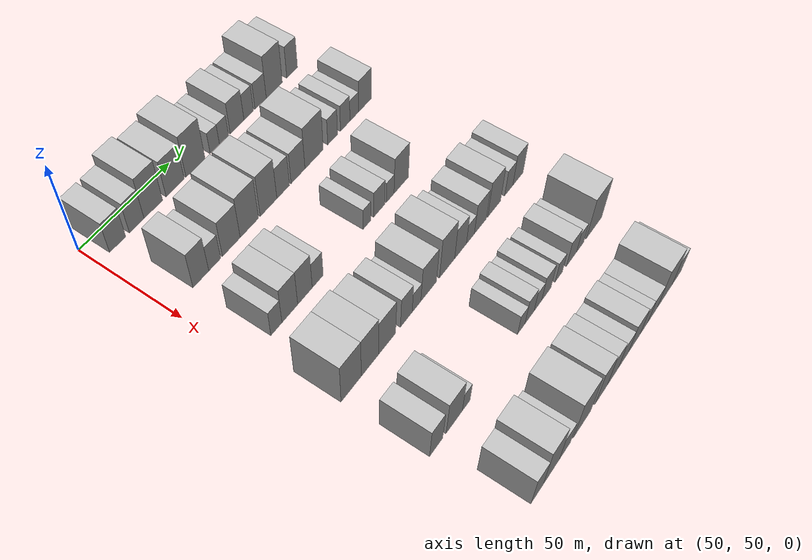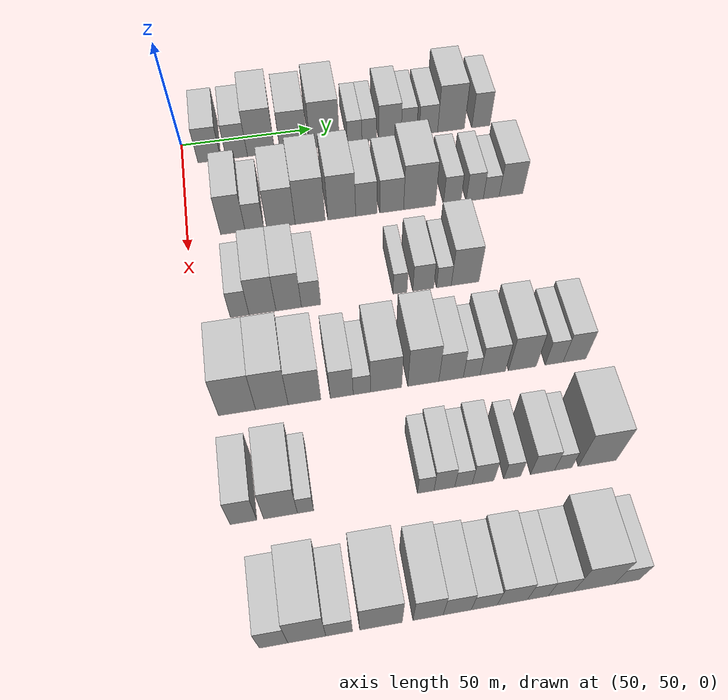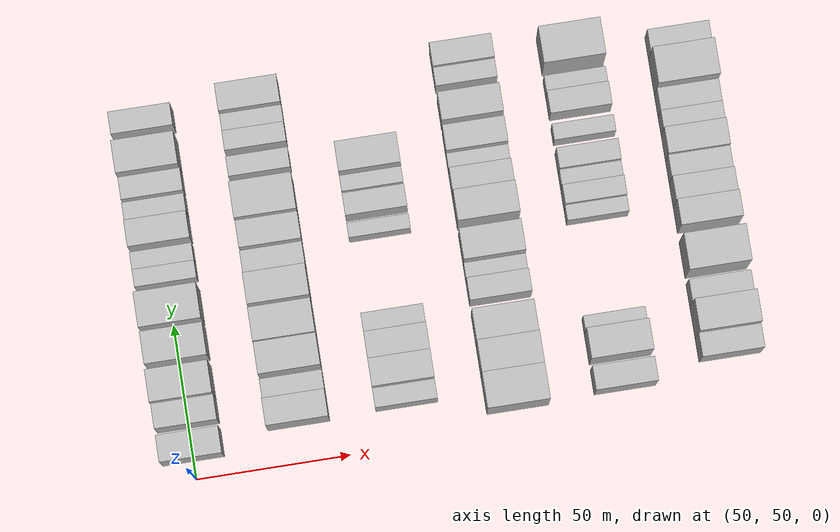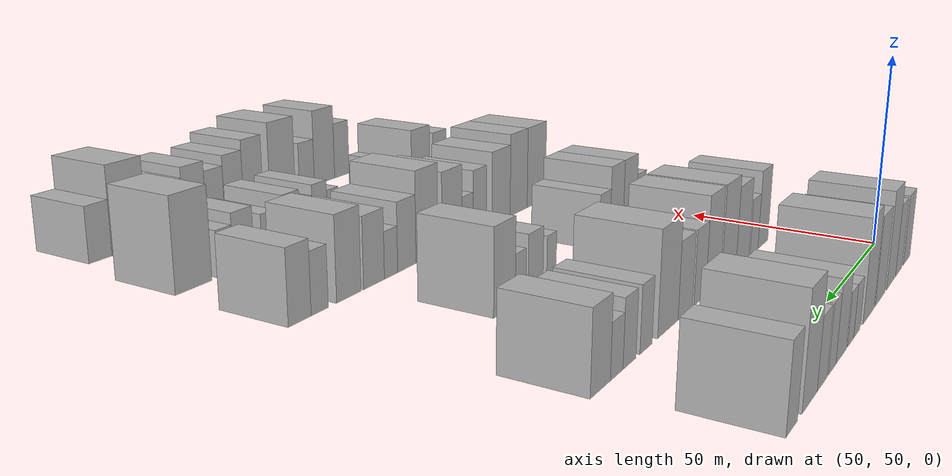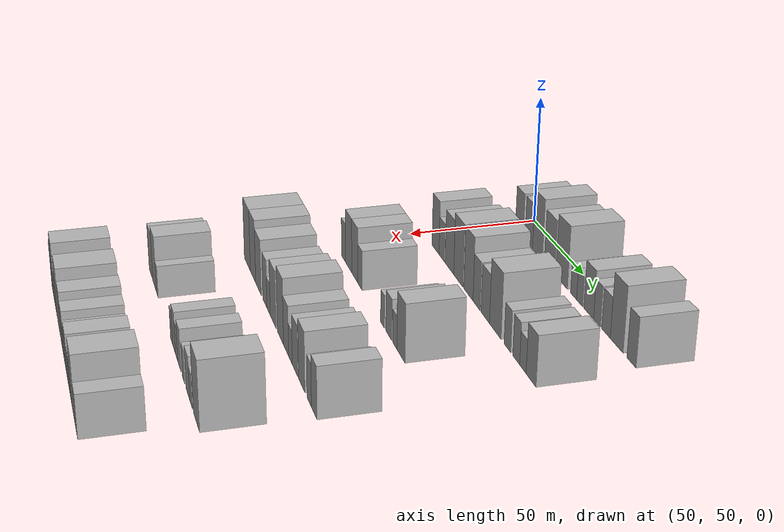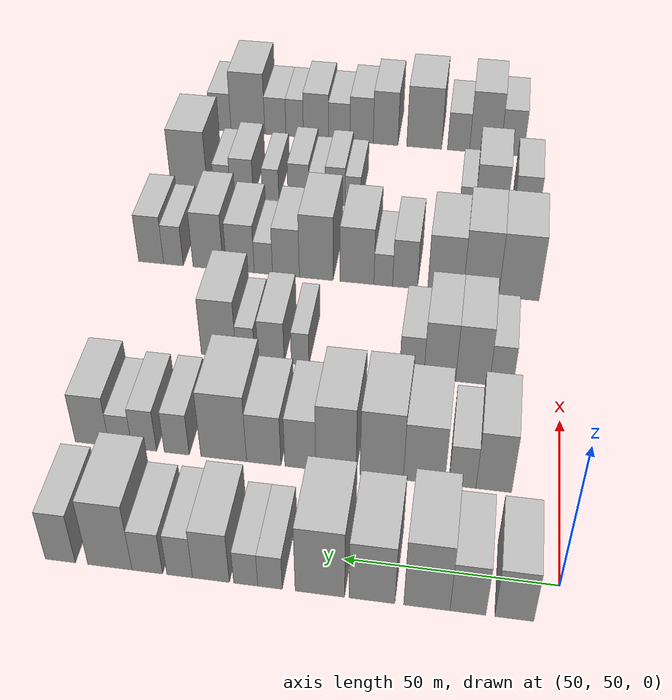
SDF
<sdf version="1.6">
 <world name="default">
  <model name="building_60">
   <static>1</static>
   <pose>50.0000 60.1032 0 0.000000 0.000000 0.000000</pose>
   <link name="link">
    <pose>0 0 9.00 0 0 0</pose>
    <collision name="collision"><geometry><box><size>20.0000 8.6808 18.0000</size></box></geometry></collision>
    <visual name="visual">
     <cast_shadows>0</cast_shadows>
     <geometry><box><size>20.0000 8.6808 18.0000</size></box></geometry>
     <material>
      <script>
       <uri>model://HANNAS_wall/materials/scripts</uri>
       <uri>model://HANNAS_wall/materials/textures</uri>
       <name>vrc/HANNAS_wall</name>
      </script>
     </material>
    </visual>
   </link>
  </model>
  <model name="building_61">
   <static>1</static>
   <pose>50.0000 70.4776 0 0.000000 0.000000 0.000000</pose>
   <link name="link">
    <pose>0 0 9.00 0 0 0</pose>
    <collision name="collision"><geometry><box><size>20.0000 8.0680 18.0000</size></box></geometry></collision>
    <visual name="visual">
     <cast_shadows>0</cast_shadows>
     <geometry><box><size>20.0000 8.0680 18.0000</size></box></geometry>
     <material>
      <script>
       <uri>model://HANNAS_wall/materials/scripts</uri>
       <uri>model://HANNAS_wall/materials/textures</uri>
       <name>vrc/HANNAS_wall</name>
      </script>
     </material>
    </visual>
   </link>
  </model>
  <model name="building_62">
   <static>1</static>
   <pose>50.0000 79.7309 0 0.000000 0.000000 0.000000</pose>
   <link name="link">
    <pose>0 0 12.00 0 0 0</pose>
    <collision name="collision"><geometry><box><size>20.0000 10.4385 24.0000</size></box></geometry></collision>
    <visual name="visual">
     <cast_shadows>0</cast_shadows>
     <geometry><box><size>20.0000 10.4385 24.0000</size></box></geometry>
     <material>
      <script>
       <uri>model://HANNAS_wall/materials/scripts</uri>
       <uri>model://HANNAS_wall/materials/textures</uri>
       <name>vrc/HANNAS_wall</name>
      </script>
     </material>
    </visual>
   </link>
  </model>
  <model name="building_63">
   <static>1</static>
   <pose>50.0000 92.1981 0 0.000000 0.000000 0.000000</pose>
   <link name="link">
    <pose>0 0 10.50 0 0 0</pose>
    <collision name="collision"><geometry><box><size>20.0000 10.4959 21.0000</size></box></geometry></collision>
    <visual name="visual">
     <cast_shadows>0</cast_shadows>
     <geometry><box><size>20.0000 10.4959 21.0000</size></box></geometry>
     <material>
      <script>
       <uri>model://HANNAS_wall/materials/scripts</uri>
       <uri>model://HANNAS_wall/materials/textures</uri>
       <name>vrc/HANNAS_wall</name>
      </script>
     </material>
    </visual>
   </link>
  </model>
  <model name="building_64">
   <static>1</static>
   <pose>50.0000 104.1348 0 0.000000 0.000000 0.000000</pose>
   <link name="link">
    <pose>0 0 12.00 0 0 0</pose>
    <collision name="collision"><geometry><box><size>20.0000 11.3775 24.0000</size></box></geometry></collision>
    <visual name="visual">
     <cast_shadows>0</cast_shadows>
     <geometry><box><size>20.0000 11.3775 24.0000</size></box></geometry>
     <material>
      <script>
       <uri>model://HANNAS_wall/materials/scripts</uri>
       <uri>model://HANNAS_wall/materials/textures</uri>
       <name>vrc/HANNAS_wall</name>
      </script>
     </material>
    </visual>
   </link>
  </model>
  <model name="building_65">
   <static>1</static>
   <pose>50.0000 115.6754 0 0.000000 0.000000 0.000000</pose>
   <link name="link">
    <pose>0 0 6.00 0 0 0</pose>
    <collision name="collision"><geometry><box><size>20.0000 5.7039 12.0000</size></box></geometry></collision>
    <visual name="visual">
     <cast_shadows>0</cast_shadows>
     <geometry><box><size>20.0000 5.7039 12.0000</size></box></geometry>
     <material>
      <script>
       <uri>model://HANNAS_wall/materials/scripts</uri>
       <uri>model://HANNAS_wall/materials/textures</uri>
       <name>vrc/HANNAS_wall</name>
      </script>
     </material>
    </visual>
   </link>
  </model>
  <model name="building_66">
   <static>1</static>
   <pose>50.0000 121.3418 0 0.000000 0.000000 0.000000</pose>
   <link name="link">
    <pose>0 0 6.00 0 0 0</pose>
    <collision name="collision"><geometry><box><size>20.0000 5.6288 12.0000</size></box></geometry></collision>
    <visual name="visual">
     <cast_shadows>0</cast_shadows>
     <geometry><box><size>20.0000 5.6288 12.0000</size></box></geometry>
     <material>
      <script>
       <uri>model://HANNAS_wall/materials/scripts</uri>
       <uri>model://HANNAS_wall/materials/textures</uri>
       <name>vrc/HANNAS_wall</name>
      </script>
     </material>
    </visual>
   </link>
  </model>
  <model name="building_67">
   <static>1</static>
   <pose>50.0000 129.4987 0 0.000000 0.000000 0.000000</pose>
   <link name="link">
    <pose>0 0 9.00 0 0 0</pose>
    <collision name="collision"><geometry><box><size>20.0000 8.6850 18.0000</size></box></geometry></collision>
    <visual name="visual">
     <cast_shadows>0</cast_shadows>
     <geometry><box><size>20.0000 8.6850 18.0000</size></box></geometry>
     <material>
      <script>
       <uri>model://HANNAS_wall/materials/scripts</uri>
       <uri>model://HANNAS_wall/materials/textures</uri>
       <name>vrc/HANNAS_wall</name>
      </script>
     </material>
    </visual>
   </link>
  </model>
  <model name="building_68">
   <static>1</static>
   <pose>50.0000 136.8755 0 0.000000 0.000000 0.000000</pose>
   <link name="link">
    <pose>0 0 7.50 0 0 0</pose>
    <collision name="collision"><geometry><box><size>20.0000 6.0686 15.0000</size></box></geometry></collision>
    <visual name="visual">
     <cast_shadows>0</cast_shadows>
     <geometry><box><size>20.0000 6.0686 15.0000</size></box></geometry>
     <material>
      <script>
       <uri>model://HANNAS_wall/materials/scripts</uri>
       <uri>model://HANNAS_wall/materials/textures</uri>
       <name>vrc/HANNAS_wall</name>
      </script>
     </material>
    </visual>
   </link>
  </model>
  <model name="building_69">
   <static>1</static>
   <pose>50.0000 144.5583 0 0.000000 0.000000 0.000000</pose>
   <link name="link">
    <pose>0 0 7.50 0 0 0</pose>
    <collision name="collision"><geometry><box><size>20.0000 7.2969 15.0000</size></box></geometry></collision>
    <visual name="visual">
     <cast_shadows>0</cast_shadows>
     <geometry><box><size>20.0000 7.2969 15.0000</size></box></geometry>
     <material>
      <script>
       <uri>model://HANNAS_wall/materials/scripts</uri>
       <uri>model://HANNAS_wall/materials/textures</uri>
       <name>vrc/HANNAS_wall</name>
      </script>
     </material>
    </visual>
   </link>
  </model>
  <model name="building_70">
   <static>1</static>
   <pose>50.0000 153.5086 0 0.000000 0.000000 0.000000</pose>
   <link name="link">
    <pose>0 0 12.00 0 0 0</pose>
    <collision name="collision"><geometry><box><size>20.0000 10.6038 24.0000</size></box></geometry></collision>
    <visual name="visual">
     <cast_shadows>0</cast_shadows>
     <geometry><box><size>20.0000 10.6038 24.0000</size></box></geometry>
     <material>
      <script>
       <uri>model://HANNAS_wall/materials/scripts</uri>
       <uri>model://HANNAS_wall/materials/textures</uri>
       <name>vrc/HANNAS_wall</name>
      </script>
     </material>
    </visual>
   </link>
  </model>
  <model name="building_71">
   <static>1</static>
   <pose>50.0000 165.4371 0 0.000000 0.000000 0.000000</pose>
   <link name="link">
    <pose>0 0 9.00 0 0 0</pose>
    <collision name="collision"><geometry><box><size>20.0000 7.2532 18.0000</size></box></geometry></collision>
    <visual name="visual">
     <cast_shadows>0</cast_shadows>
     <geometry><box><size>20.0000 7.2532 18.0000</size></box></geometry>
     <material>
      <script>
       <uri>model://HANNAS_wall/materials/scripts</uri>
       <uri>model://HANNAS_wall/materials/textures</uri>
       <name>vrc/HANNAS_wall</name>
      </script>
     </material>
    </visual>
   </link>
  </model>
  <model name="building_186">
   <static>1</static>
   <pose>85.0000 66.1621 0 0.000000 0.000000 0.000000</pose>
   <link name="link">
    <pose>0 0 10.50 0 0 0</pose>
    <collision name="collision"><geometry><box><size>20.0000 8.7911 21.0000</size></box></geometry></collision>
    <visual name="visual">
     <cast_shadows>0</cast_shadows>
     <geometry><box><size>20.0000 8.7911 21.0000</size></box></geometry>
     <material>
      <script>
       <uri>model://HANNAS_wall/materials/scripts</uri>
       <uri>model://HANNAS_wall/materials/textures</uri>
       <name>vrc/HANNAS_wall</name>
      </script>
     </material>
    </visual>
   </link>
  </model>
  <model name="building_187">
   <static>1</static>
   <pose>85.0000 73.9094 0 0.000000 0.000000 0.000000</pose>
   <link name="link">
    <pose>0 0 7.50 0 0 0</pose>
    <collision name="collision"><geometry><box><size>20.0000 6.7035 15.0000</size></box></geometry></collision>
    <visual name="visual">
     <cast_shadows>0</cast_shadows>
     <geometry><box><size>20.0000 6.7035 15.0000</size></box></geometry>
     <material>
      <script>
       <uri>model://HANNAS_wall/materials/scripts</uri>
       <uri>model://HANNAS_wall/materials/textures</uri>
       <name>vrc/HANNAS_wall</name>
      </script>
     </material>
    </visual>
   </link>
  </model>
  <model name="building_188">
   <static>1</static>
   <pose>85.0000 83.3965 0 0.000000 0.000000 0.000000</pose>
   <link name="link">
    <pose>0 0 10.50 0 0 0</pose>
    <collision name="collision"><geometry><box><size>20.0000 10.2705 21.0000</size></box></geometry></collision>
    <visual name="visual">
     <cast_shadows>0</cast_shadows>
     <geometry><box><size>20.0000 10.2705 21.0000</size></box></geometry>
     <material>
      <script>
       <uri>model://HANNAS_wall/materials/scripts</uri>
       <uri>model://HANNAS_wall/materials/textures</uri>
       <name>vrc/HANNAS_wall</name>
      </script>
     </material>
    </visual>
   </link>
  </model>
  <model name="building_189">
   <static>1</static>
   <pose>85.0000 93.9676 0 0.000000 0.000000 0.000000</pose>
   <link name="link">
    <pose>0 0 12.00 0 0 0</pose>
    <collision name="collision"><geometry><box><size>20.0000 10.8718 24.0000</size></box></geometry></collision>
    <visual name="visual">
     <cast_shadows>0</cast_shadows>
     <geometry><box><size>20.0000 10.8718 24.0000</size></box></geometry>
     <material>
      <script>
       <uri>model://HANNAS_wall/materials/scripts</uri>
       <uri>model://HANNAS_wall/materials/textures</uri>
       <name>vrc/HANNAS_wall</name>
      </script>
     </material>
    </visual>
   </link>
  </model>
  <model name="building_190">
   <static>1</static>
   <pose>85.0000 105.4801 0 0.000000 0.000000 0.000000</pose>
   <link name="link">
    <pose>0 0 12.00 0 0 0</pose>
    <collision name="collision"><geometry><box><size>20.0000 10.1533 24.0000</size></box></geometry></collision>
    <visual name="visual">
     <cast_shadows>0</cast_shadows>
     <geometry><box><size>20.0000 10.1533 24.0000</size></box></geometry>
     <material>
      <script>
       <uri>model://HANNAS_wall/materials/scripts</uri>
       <uri>model://HANNAS_wall/materials/textures</uri>
       <name>vrc/HANNAS_wall</name>
      </script>
     </material>
    </visual>
   </link>
  </model>
  <model name="building_191">
   <static>1</static>
   <pose>85.0000 114.4737 0 0.000000 0.000000 0.000000</pose>
   <link name="link">
    <pose>0 0 9.00 0 0 0</pose>
    <collision name="collision"><geometry><box><size>20.0000 7.8338 18.0000</size></box></geometry></collision>
    <visual name="visual">
     <cast_shadows>0</cast_shadows>
     <geometry><box><size>20.0000 7.8338 18.0000</size></box></geometry>
     <material>
      <script>
       <uri>model://HANNAS_wall/materials/scripts</uri>
       <uri>model://HANNAS_wall/materials/textures</uri>
       <name>vrc/HANNAS_wall</name>
      </script>
     </material>
    </visual>
   </link>
  </model>
  <model name="building_192">
   <static>1</static>
   <pose>85.0000 123.7861 0 0.000000 0.000000 0.000000</pose>
   <link name="link">
    <pose>0 0 9.00 0 0 0</pose>
    <collision name="collision"><geometry><box><size>20.0000 8.7911 18.0000</size></box></geometry></collision>
    <visual name="visual">
     <cast_shadows>0</cast_shadows>
     <geometry><box><size>20.0000 8.7911 18.0000</size></box></geometry>
     <material>
      <script>
       <uri>model://HANNAS_wall/materials/scripts</uri>
       <uri>model://HANNAS_wall/materials/textures</uri>
       <name>vrc/HANNAS_wall</name>
      </script>
     </material>
    </visual>
   </link>
  </model>
  <model name="building_193">
   <static>1</static>
   <pose>85.0000 134.0909 0 0.000000 0.000000 0.000000</pose>
   <link name="link">
    <pose>0 0 12.00 0 0 0</pose>
    <collision name="collision"><geometry><box><size>20.0000 11.8184 24.0000</size></box></geometry></collision>
    <visual name="visual">
     <cast_shadows>0</cast_shadows>
     <geometry><box><size>20.0000 11.8184 24.0000</size></box></geometry>
     <material>
      <script>
       <uri>model://HANNAS_wall/materials/scripts</uri>
       <uri>model://HANNAS_wall/materials/textures</uri>
       <name>vrc/HANNAS_wall</name>
      </script>
     </material>
    </visual>
   </link>
  </model>
  <model name="building_194">
   <static>1</static>
   <pose>85.0000 146.2504 0 0.000000 0.000000 0.000000</pose>
   <link name="link">
    <pose>0 0 7.50 0 0 0</pose>
    <collision name="collision"><geometry><box><size>20.0000 6.5005 15.0000</size></box></geometry></collision>
    <visual name="visual">
     <cast_shadows>0</cast_shadows>
     <geometry><box><size>20.0000 6.5005 15.0000</size></box></geometry>
     <material>
      <script>
       <uri>model://HANNAS_wall/materials/scripts</uri>
       <uri>model://HANNAS_wall/materials/textures</uri>
       <name>vrc/HANNAS_wall</name>
      </script>
     </material>
    </visual>
   </link>
  </model>
  <model name="building_195">
   <static>1</static>
   <pose>85.0000 154.7199 0 0.000000 0.000000 0.000000</pose>
   <link name="link">
    <pose>0 0 7.50 0 0 0</pose>
    <collision name="collision"><geometry><box><size>20.0000 6.4386 15.0000</size></box></geometry></collision>
    <visual name="visual">
     <cast_shadows>0</cast_shadows>
     <geometry><box><size>20.0000 6.4386 15.0000</size></box></geometry>
     <material>
      <script>
       <uri>model://HANNAS_wall/materials/scripts</uri>
       <uri>model://HANNAS_wall/materials/textures</uri>
       <name>vrc/HANNAS_wall</name>
      </script>
     </material>
    </visual>
   </link>
  </model>
  <model name="building_196">
   <static>1</static>
   <pose>85.0000 160.9288 0 0.000000 0.000000 0.000000</pose>
   <link name="link">
    <pose>0 0 6.00 0 0 0</pose>
    <collision name="collision"><geometry><box><size>20.0000 5.9792 12.0000</size></box></geometry></collision>
    <visual name="visual">
     <cast_shadows>0</cast_shadows>
     <geometry><box><size>20.0000 5.9792 12.0000</size></box></geometry>
     <material>
      <script>
       <uri>model://HANNAS_wall/materials/scripts</uri>
       <uri>model://HANNAS_wall/materials/textures</uri>
       <name>vrc/HANNAS_wall</name>
      </script>
     </material>
    </visual>
   </link>
  </model>
  <model name="building_197">
   <static>1</static>
   <pose>85.0000 168.4121 0 0.000000 0.000000 0.000000</pose>
   <link name="link">
    <pose>0 0 9.00 0 0 0</pose>
    <collision name="collision"><geometry><box><size>20.0000 8.9873 18.0000</size></box></geometry></collision>
    <visual name="visual">
     <cast_shadows>0</cast_shadows>
     <geometry><box><size>20.0000 8.9873 18.0000</size></box></geometry>
     <material>
      <script>
       <uri>model://HANNAS_wall/materials/scripts</uri>
       <uri>model://HANNAS_wall/materials/textures</uri>
       <name>vrc/HANNAS_wall</name>
      </script>
     </material>
    </visual>
   </link>
  </model>
  <model name="building_311">
   <static>1</static>
   <pose>120.0000 65.6397 0 0.000000 0.000000 0.000000</pose>
   <link name="link">
    <pose>0 0 7.50 0 0 0</pose>
    <collision name="collision"><geometry><box><size>20.0000 6.2974 15.0000</size></box></geometry></collision>
    <visual name="visual">
     <cast_shadows>0</cast_shadows>
     <geometry><box><size>20.0000 6.2974 15.0000</size></box></geometry>
     <material>
      <script>
       <uri>model://HANNAS_wall/materials/scripts</uri>
       <uri>model://HANNAS_wall/materials/textures</uri>
       <name>vrc/HANNAS_wall</name>
      </script>
     </material>
    </visual>
   </link>
  </model>
  <model name="building_312">
   <static>1</static>
   <pose>120.0000 73.3262 0 0.000000 0.000000 0.000000</pose>
   <link name="link">
    <pose>0 0 10.50 0 0 0</pose>
    <collision name="collision"><geometry><box><size>20.0000 9.0757 21.0000</size></box></geometry></collision>
    <visual name="visual">
     <cast_shadows>0</cast_shadows>
     <geometry><box><size>20.0000 9.0757 21.0000</size></box></geometry>
     <material>
      <script>
       <uri>model://HANNAS_wall/materials/scripts</uri>
       <uri>model://HANNAS_wall/materials/textures</uri>
       <name>vrc/HANNAS_wall</name>
      </script>
     </material>
    </visual>
   </link>
  </model>
  <model name="building_313">
   <static>1</static>
   <pose>120.0000 82.1674 0 0.000000 0.000000 0.000000</pose>
   <link name="link">
    <pose>0 0 10.50 0 0 0</pose>
    <collision name="collision"><geometry><box><size>20.0000 8.6066 21.0000</size></box></geometry></collision>
    <visual name="visual">
     <cast_shadows>0</cast_shadows>
     <geometry><box><size>20.0000 8.6066 21.0000</size></box></geometry>
     <material>
      <script>
       <uri>model://HANNAS_wall/materials/scripts</uri>
       <uri>model://HANNAS_wall/materials/textures</uri>
       <name>vrc/HANNAS_wall</name>
      </script>
     </material>
    </visual>
   </link>
  </model>
  <model name="building_314">
   <static>1</static>
   <pose>120.0000 89.7634 0 0.000000 0.000000 0.000000</pose>
   <link name="link">
    <pose>0 0 7.50 0 0 0</pose>
    <collision name="collision"><geometry><box><size>20.0000 6.5854 15.0000</size></box></geometry></collision>
    <visual name="visual">
     <cast_shadows>0</cast_shadows>
     <geometry><box><size>20.0000 6.5854 15.0000</size></box></geometry>
     <material>
      <script>
       <uri>model://HANNAS_wall/materials/scripts</uri>
       <uri>model://HANNAS_wall/materials/textures</uri>
       <name>vrc/HANNAS_wall</name>
      </script>
     </material>
    </visual>
   </link>
  </model>
  <model name="building_315">
   <static>1</static>
   <pose>120.0000 120.3362 0 0.000000 0.000000 0.000000</pose>
   <link name="link">
    <pose>0 0 6.00 0 0 0</pose>
    <collision name="collision"><geometry><box><size>20.0000 4.8534 12.0000</size></box></geometry></collision>
    <visual name="visual">
     <cast_shadows>0</cast_shadows>
     <geometry><box><size>20.0000 4.8534 12.0000</size></box></geometry>
     <material>
      <script>
       <uri>model://HANNAS_wall/materials/scripts</uri>
       <uri>model://HANNAS_wall/materials/textures</uri>
       <name>vrc/HANNAS_wall</name>
      </script>
     </material>
    </visual>
   </link>
  </model>
  <model name="building_316">
   <static>1</static>
   <pose>120.0000 128.4043 0 0.000000 0.000000 0.000000</pose>
   <link name="link">
    <pose>0 0 7.50 0 0 0</pose>
    <collision name="collision"><geometry><box><size>20.0000 7.2827 15.0000</size></box></geometry></collision>
    <visual name="visual">
     <cast_shadows>0</cast_shadows>
     <geometry><box><size>20.0000 7.2827 15.0000</size></box></geometry>
     <material>
      <script>
       <uri>model://HANNAS_wall/materials/scripts</uri>
       <uri>model://HANNAS_wall/materials/textures</uri>
       <name>vrc/HANNAS_wall</name>
      </script>
     </material>
    </visual>
   </link>
  </model>
  <model name="building_317">
   <static>1</static>
   <pose>120.0000 135.6257 0 0.000000 0.000000 0.000000</pose>
   <link name="link">
    <pose>0 0 6.00 0 0 0</pose>
    <collision name="collision"><geometry><box><size>20.0000 5.1600 12.0000</size></box></geometry></collision>
    <visual name="visual">
     <cast_shadows>0</cast_shadows>
     <geometry><box><size>20.0000 5.1600 12.0000</size></box></geometry>
     <material>
      <script>
       <uri>model://HANNAS_wall/materials/scripts</uri>
       <uri>model://HANNAS_wall/materials/textures</uri>
       <name>vrc/HANNAS_wall</name>
      </script>
     </material>
    </visual>
   </link>
  </model>
  <model name="building_318">
   <static>1</static>
   <pose>120.0000 143.0825 0 0.000000 0.000000 0.000000</pose>
   <link name="link">
    <pose>0 0 10.50 0 0 0</pose>
    <collision name="collision"><geometry><box><size>20.0000 9.7536 21.0000</size></box></geometry></collision>
    <visual name="visual">
     <cast_shadows>0</cast_shadows>
     <geometry><box><size>20.0000 9.7536 21.0000</size></box></geometry>
     <material>
      <script>
       <uri>model://HANNAS_wall/materials/scripts</uri>
       <uri>model://HANNAS_wall/materials/textures</uri>
       <name>vrc/HANNAS_wall</name>
      </script>
     </material>
    </visual>
   </link>
  </model>
  <model name="building_433">
   <static>1</static>
   <pose>155.0000 61.8766 0 0.000000 0.000000 0.000000</pose>
   <link name="link">
    <pose>0 0 12.00 0 0 0</pose>
    <collision name="collision"><geometry><box><size>20.0000 11.6687 24.0000</size></box></geometry></collision>
    <visual name="visual">
     <cast_shadows>0</cast_shadows>
     <geometry><box><size>20.0000 11.6687 24.0000</size></box></geometry>
     <material>
      <script>
       <uri>model://HANNAS_wall/materials/scripts</uri>
       <uri>model://HANNAS_wall/materials/textures</uri>
       <name>vrc/HANNAS_wall</name>
      </script>
     </material>
    </visual>
   </link>
  </model>
  <model name="building_434">
   <static>1</static>
   <pose>155.0000 72.8483 0 0.000000 0.000000 0.000000</pose>
   <link name="link">
    <pose>0 0 12.00 0 0 0</pose>
    <collision name="collision"><geometry><box><size>20.0000 10.2746 24.0000</size></box></geometry></collision>
    <visual name="visual">
     <cast_shadows>0</cast_shadows>
     <geometry><box><size>20.0000 10.2746 24.0000</size></box></geometry>
     <material>
      <script>
       <uri>model://HANNAS_wall/materials/scripts</uri>
       <uri>model://HANNAS_wall/materials/textures</uri>
       <name>vrc/HANNAS_wall</name>
      </script>
     </material>
    </visual>
   </link>
  </model>
  <model name="building_435">
   <static>1</static>
   <pose>155.0000 83.1757 0 0.000000 0.000000 0.000000</pose>
   <link name="link">
    <pose>0 0 10.50 0 0 0</pose>
    <collision name="collision"><geometry><box><size>20.0000 10.3802 21.0000</size></box></geometry></collision>
    <visual name="visual">
     <cast_shadows>0</cast_shadows>
     <geometry><box><size>20.0000 10.3802 21.0000</size></box></geometry>
     <material>
      <script>
       <uri>model://HANNAS_wall/materials/scripts</uri>
       <uri>model://HANNAS_wall/materials/textures</uri>
       <name>vrc/HANNAS_wall</name>
      </script>
     </material>
    </visual>
   </link>
  </model>
  <model name="building_436">
   <static>1</static>
   <pose>155.0000 95.0254 0 0.000000 0.000000 0.000000</pose>
   <link name="link">
    <pose>0 0 9.00 0 0 0</pose>
    <collision name="collision"><geometry><box><size>20.0000 7.3194 18.0000</size></box></geometry></collision>
    <visual name="visual">
     <cast_shadows>0</cast_shadows>
     <geometry><box><size>20.0000 7.3194 18.0000</size></box></geometry>
     <material>
      <script>
       <uri>model://HANNAS_wall/materials/scripts</uri>
       <uri>model://HANNAS_wall/materials/textures</uri>
       <name>vrc/HANNAS_wall</name>
      </script>
     </material>
    </visual>
   </link>
  </model>
  <model name="building_437">
   <static>1</static>
   <pose>155.0000 101.4535 0 0.000000 0.000000 0.000000</pose>
   <link name="link">
    <pose>0 0 6.00 0 0 0</pose>
    <collision name="collision"><geometry><box><size>20.0000 5.5367 12.0000</size></box></geometry></collision>
    <visual name="visual">
     <cast_shadows>0</cast_shadows>
     <geometry><box><size>20.0000 5.5367 12.0000</size></box></geometry>
     <material>
      <script>
       <uri>model://HANNAS_wall/materials/scripts</uri>
       <uri>model://HANNAS_wall/materials/textures</uri>
       <name>vrc/HANNAS_wall</name>
      </script>
     </material>
    </visual>
   </link>
  </model>
  <model name="building_438">
   <static>1</static>
   <pose>155.0000 109.2726 0 0.000000 0.000000 0.000000</pose>
   <link name="link">
    <pose>0 0 10.50 0 0 0</pose>
    <collision name="collision"><geometry><box><size>20.0000 10.1015 21.0000</size></box></geometry></collision>
    <visual name="visual">
     <cast_shadows>0</cast_shadows>
     <geometry><box><size>20.0000 10.1015 21.0000</size></box></geometry>
     <material>
      <script>
       <uri>model://HANNAS_wall/materials/scripts</uri>
       <uri>model://HANNAS_wall/materials/textures</uri>
       <name>vrc/HANNAS_wall</name>
      </script>
     </material>
    </visual>
   </link>
  </model>
  <model name="building_439">
   <static>1</static>
   <pose>155.0000 121.3754 0 0.000000 0.000000 0.000000</pose>
   <link name="link">
    <pose>0 0 12.00 0 0 0</pose>
    <collision name="collision"><geometry><box><size>20.0000 10.1041 24.0000</size></box></geometry></collision>
    <visual name="visual">
     <cast_shadows>0</cast_shadows>
     <geometry><box><size>20.0000 10.1041 24.0000</size></box></geometry>
     <material>
      <script>
       <uri>model://HANNAS_wall/materials/scripts</uri>
       <uri>model://HANNAS_wall/materials/textures</uri>
       <name>vrc/HANNAS_wall</name>
      </script>
     </material>
    </visual>
   </link>
  </model>
  <model name="building_440">
   <static>1</static>
   <pose>155.0000 130.4437 0 0.000000 0.000000 0.000000</pose>
   <link name="link">
    <pose>0 0 9.00 0 0 0</pose>
    <collision name="collision"><geometry><box><size>20.0000 8.0325 18.0000</size></box></geometry></collision>
    <visual name="visual">
     <cast_shadows>0</cast_shadows>
     <geometry><box><size>20.0000 8.0325 18.0000</size></box></geometry>
     <material>
      <script>
       <uri>model://HANNAS_wall/materials/scripts</uri>
       <uri>model://HANNAS_wall/materials/textures</uri>
       <name>vrc/HANNAS_wall</name>
      </script>
     </material>
    </visual>
   </link>
  </model>
  <model name="building_441">
   <static>1</static>
   <pose>155.0000 137.2264 0 0.000000 0.000000 0.000000</pose>
   <link name="link">
    <pose>0 0 6.00 0 0 0</pose>
    <collision name="collision"><geometry><box><size>20.0000 5.5330 12.0000</size></box></geometry></collision>
    <visual name="visual">
     <cast_shadows>0</cast_shadows>
     <geometry><box><size>20.0000 5.5330 12.0000</size></box></geometry>
     <material>
      <script>
       <uri>model://HANNAS_wall/materials/scripts</uri>
       <uri>model://HANNAS_wall/materials/textures</uri>
       <name>vrc/HANNAS_wall</name>
      </script>
     </material>
    </visual>
   </link>
  </model>
  <model name="building_442">
   <static>1</static>
   <pose>155.0000 144.1922 0 0.000000 0.000000 0.000000</pose>
   <link name="link">
    <pose>0 0 9.00 0 0 0</pose>
    <collision name="collision"><geometry><box><size>20.0000 8.3985 18.0000</size></box></geometry></collision>
    <visual name="visual">
     <cast_shadows>0</cast_shadows>
     <geometry><box><size>20.0000 8.3985 18.0000</size></box></geometry>
     <material>
      <script>
       <uri>model://HANNAS_wall/materials/scripts</uri>
       <uri>model://HANNAS_wall/materials/textures</uri>
       <name>vrc/HANNAS_wall</name>
      </script>
     </material>
    </visual>
   </link>
  </model>
  <model name="building_443">
   <static>1</static>
   <pose>155.0000 154.0105 0 0.000000 0.000000 0.000000</pose>
   <link name="link">
    <pose>0 0 10.50 0 0 0</pose>
    <collision name="collision"><geometry><box><size>20.0000 9.2381 21.0000</size></box></geometry></collision>
    <visual name="visual">
     <cast_shadows>0</cast_shadows>
     <geometry><box><size>20.0000 9.2381 21.0000</size></box></geometry>
     <material>
      <script>
       <uri>model://HANNAS_wall/materials/scripts</uri>
       <uri>model://HANNAS_wall/materials/textures</uri>
       <name>vrc/HANNAS_wall</name>
      </script>
     </material>
    </visual>
   </link>
  </model>
  <model name="building_444">
   <static>1</static>
   <pose>155.0000 164.6362 0 0.000000 0.000000 0.000000</pose>
   <link name="link">
    <pose>0 0 7.50 0 0 0</pose>
    <collision name="collision"><geometry><box><size>20.0000 6.0134 15.0000</size></box></geometry></collision>
    <visual name="visual">
     <cast_shadows>0</cast_shadows>
     <geometry><box><size>20.0000 6.0134 15.0000</size></box></geometry>
     <material>
      <script>
       <uri>model://HANNAS_wall/materials/scripts</uri>
       <uri>model://HANNAS_wall/materials/textures</uri>
       <name>vrc/HANNAS_wall</name>
      </script>
     </material>
    </visual>
   </link>
  </model>
  <model name="building_445">
   <static>1</static>
   <pose>155.0000 171.5011 0 0.000000 0.000000 0.000000</pose>
   <link name="link">
    <pose>0 0 9.00 0 0 0</pose>
    <collision name="collision"><geometry><box><size>20.0000 7.7163 18.0000</size></box></geometry></collision>
    <visual name="visual">
     <cast_shadows>0</cast_shadows>
     <geometry><box><size>20.0000 7.7163 18.0000</size></box></geometry>
     <material>
      <script>
       <uri>model://HANNAS_wall/materials/scripts</uri>
       <uri>model://HANNAS_wall/materials/textures</uri>
       <name>vrc/HANNAS_wall</name>
      </script>
     </material>
    </visual>
   </link>
  </model>
  <model name="building_557">
   <static>1</static>
   <pose>190.0000 60.8457 0 0.000000 0.000000 0.000000</pose>
   <link name="link">
    <pose>0 0 9.00 0 0 0</pose>
    <collision name="collision"><geometry><box><size>20.0000 7.8183 18.0000</size></box></geometry></collision>
    <visual name="visual">
     <cast_shadows>0</cast_shadows>
     <geometry><box><size>20.0000 7.8183 18.0000</size></box></geometry>
     <material>
      <script>
       <uri>model://HANNAS_wall/materials/scripts</uri>
       <uri>model://HANNAS_wall/materials/textures</uri>
       <name>vrc/HANNAS_wall</name>
      </script>
     </material>
    </visual>
   </link>
  </model>
  <model name="building_558">
   <static>1</static>
   <pose>190.0000 71.7209 0 0.000000 0.000000 0.000000</pose>
   <link name="link">
    <pose>0 0 10.50 0 0 0</pose>
    <collision name="collision"><geometry><box><size>20.0000 9.9321 21.0000</size></box></geometry></collision>
    <visual name="visual">
     <cast_shadows>0</cast_shadows>
     <geometry><box><size>20.0000 9.9321 21.0000</size></box></geometry>
     <material>
      <script>
       <uri>model://HANNAS_wall/materials/scripts</uri>
       <uri>model://HANNAS_wall/materials/textures</uri>
       <name>vrc/HANNAS_wall</name>
      </script>
     </material>
    </visual>
   </link>
  </model>
  <model name="building_559">
   <static>1</static>
   <pose>190.0000 79.0983 0 0.000000 0.000000 0.000000</pose>
   <link name="link">
    <pose>0 0 6.00 0 0 0</pose>
    <collision name="collision"><geometry><box><size>20.0000 4.8227 12.0000</size></box></geometry></collision>
    <visual name="visual">
     <cast_shadows>0</cast_shadows>
     <geometry><box><size>20.0000 4.8227 12.0000</size></box></geometry>
     <material>
      <script>
       <uri>model://HANNAS_wall/materials/scripts</uri>
       <uri>model://HANNAS_wall/materials/textures</uri>
       <name>vrc/HANNAS_wall</name>
      </script>
     </material>
    </visual>
   </link>
  </model>
  <model name="building_560">
   <static>1</static>
   <pose>190.0000 115.0488 0 0.000000 0.000000 0.000000</pose>
   <link name="link">
    <pose>0 0 6.00 0 0 0</pose>
    <collision name="collision"><geometry><box><size>20.0000 5.0261 12.0000</size></box></geometry></collision>
    <visual name="visual">
     <cast_shadows>0</cast_shadows>
     <geometry><box><size>20.0000 5.0261 12.0000</size></box></geometry>
     <material>
      <script>
       <uri>model://HANNAS_wall/materials/scripts</uri>
       <uri>model://HANNAS_wall/materials/textures</uri>
       <name>vrc/HANNAS_wall</name>
      </script>
     </material>
    </visual>
   </link>
  </model>
  <model name="building_561">
   <static>1</static>
   <pose>190.0000 120.7089 0 0.000000 0.000000 0.000000</pose>
   <link name="link">
    <pose>0 0 7.50 0 0 0</pose>
    <collision name="collision"><geometry><box><size>20.0000 6.2941 15.0000</size></box></geometry></collision>
    <visual name="visual">
     <cast_shadows>0</cast_shadows>
     <geometry><box><size>20.0000 6.2941 15.0000</size></box></geometry>
     <material>
      <script>
       <uri>model://HANNAS_wall/materials/scripts</uri>
       <uri>model://HANNAS_wall/materials/textures</uri>
       <name>vrc/HANNAS_wall</name>
      </script>
     </material>
    </visual>
   </link>
  </model>
  <model name="building_562">
   <static>1</static>
   <pose>190.0000 126.5048 0 0.000000 0.000000 0.000000</pose>
   <link name="link">
    <pose>0 0 6.00 0 0 0</pose>
    <collision name="collision"><geometry><box><size>20.0000 5.2977 12.0000</size></box></geometry></collision>
    <visual name="visual">
     <cast_shadows>0</cast_shadows>
     <geometry><box><size>20.0000 5.2977 12.0000</size></box></geometry>
     <material>
      <script>
       <uri>model://HANNAS_wall/materials/scripts</uri>
       <uri>model://HANNAS_wall/materials/textures</uri>
       <name>vrc/HANNAS_wall</name>
      </script>
     </material>
    </visual>
   </link>
  </model>
  <model name="building_563">
   <static>1</static>
   <pose>190.0000 132.5205 0 0.000000 0.000000 0.000000</pose>
   <link name="link">
    <pose>0 0 7.50 0 0 0</pose>
    <collision name="collision"><geometry><box><size>20.0000 6.7337 15.0000</size></box></geometry></collision>
    <visual name="visual">
     <cast_shadows>0</cast_shadows>
     <geometry><box><size>20.0000 6.7337 15.0000</size></box></geometry>
     <material>
      <script>
       <uri>model://HANNAS_wall/materials/scripts</uri>
       <uri>model://HANNAS_wall/materials/textures</uri>
       <name>vrc/HANNAS_wall</name>
      </script>
     </material>
    </visual>
   </link>
  </model>
  <model name="building_564">
   <static>1</static>
   <pose>190.0000 141.5327 0 0.000000 0.000000 0.000000</pose>
   <link name="link">
    <pose>0 0 6.00 0 0 0</pose>
    <collision name="collision"><geometry><box><size>20.0000 5.2908 12.0000</size></box></geometry></collision>
    <visual name="visual">
     <cast_shadows>0</cast_shadows>
     <geometry><box><size>20.0000 5.2908 12.0000</size></box></geometry>
     <material>
      <script>
       <uri>model://HANNAS_wall/materials/scripts</uri>
       <uri>model://HANNAS_wall/materials/textures</uri>
       <name>vrc/HANNAS_wall</name>
      </script>
     </material>
    </visual>
   </link>
  </model>
  <model name="building_565">
   <static>1</static>
   <pose>190.0000 150.9225 0 0.000000 0.000000 0.000000</pose>
   <link name="link">
    <pose>0 0 7.50 0 0 0</pose>
    <collision name="collision"><geometry><box><size>20.0000 7.4887 15.0000</size></box></geometry></collision>
    <visual name="visual">
     <cast_shadows>0</cast_shadows>
     <geometry><box><size>20.0000 7.4887 15.0000</size></box></geometry>
     <material>
      <script>
       <uri>model://HANNAS_wall/materials/scripts</uri>
       <uri>model://HANNAS_wall/materials/textures</uri>
       <name>vrc/HANNAS_wall</name>
      </script>
     </material>
    </visual>
   </link>
  </model>
  <model name="building_566">
   <static>1</static>
   <pose>190.0000 157.3862 0 0.000000 0.000000 0.000000</pose>
   <link name="link">
    <pose>0 0 6.00 0 0 0</pose>
    <collision name="collision"><geometry><box><size>20.0000 5.4387 12.0000</size></box></geometry></collision>
    <visual name="visual">
     <cast_shadows>0</cast_shadows>
     <geometry><box><size>20.0000 5.4387 12.0000</size></box></geometry>
     <material>
      <script>
       <uri>model://HANNAS_wall/materials/scripts</uri>
       <uri>model://HANNAS_wall/materials/textures</uri>
       <name>vrc/HANNAS_wall</name>
      </script>
     </material>
    </visual>
   </link>
  </model>
  <model name="building_567">
   <static>1</static>
   <pose>190.0000 168.0736 0 0.000000 0.000000 0.000000</pose>
   <link name="link">
    <pose>0 0 12.00 0 0 0</pose>
    <collision name="collision"><geometry><box><size>20.0000 11.9360 24.0000</size></box></geometry></collision>
    <visual name="visual">
     <cast_shadows>0</cast_shadows>
     <geometry><box><size>20.0000 11.9360 24.0000</size></box></geometry>
     <material>
      <script>
       <uri>model://HANNAS_wall/materials/scripts</uri>
       <uri>model://HANNAS_wall/materials/textures</uri>
       <name>vrc/HANNAS_wall</name>
      </script>
     </material>
    </visual>
   </link>
  </model>
  <model name="building_687">
   <static>1</static>
   <pose>225.0000 66.0063 0 0.000000 0.000000 0.000000</pose>
   <link name="link">
    <pose>0 0 9.00 0 0 0</pose>
    <collision name="collision"><geometry><box><size>20.0000 7.7283 18.0000</size></box></geometry></collision>
    <visual name="visual">
     <cast_shadows>0</cast_shadows>
     <geometry><box><size>20.0000 7.7283 18.0000</size></box></geometry>
     <material>
      <script>
       <uri>model://HANNAS_wall/materials/scripts</uri>
       <uri>model://HANNAS_wall/materials/textures</uri>
       <name>vrc/HANNAS_wall</name>
      </script>
     </material>
    </visual>
   </link>
  </model>
  <model name="building_688">
   <static>1</static>
   <pose>225.0000 75.0520 0 0.000000 0.000000 0.000000</pose>
   <link name="link">
    <pose>0 0 12.00 0 0 0</pose>
    <collision name="collision"><geometry><box><size>20.0000 10.3632 24.0000</size></box></geometry></collision>
    <visual name="visual">
     <cast_shadows>0</cast_shadows>
     <geometry><box><size>20.0000 10.3632 24.0000</size></box></geometry>
     <material>
      <script>
       <uri>model://HANNAS_wall/materials/scripts</uri>
       <uri>model://HANNAS_wall/materials/textures</uri>
       <name>vrc/HANNAS_wall</name>
      </script>
     </material>
    </visual>
   </link>
  </model>
  <model name="building_689">
   <static>1</static>
   <pose>225.0000 83.8986 0 0.000000 0.000000 0.000000</pose>
   <link name="link">
    <pose>0 0 7.50 0 0 0</pose>
    <collision name="collision"><geometry><box><size>20.0000 7.3299 15.0000</size></box></geometry></collision>
    <visual name="visual">
     <cast_shadows>0</cast_shadows>
     <geometry><box><size>20.0000 7.3299 15.0000</size></box></geometry>
     <material>
      <script>
       <uri>model://HANNAS_wall/materials/scripts</uri>
       <uri>model://HANNAS_wall/materials/textures</uri>
       <name>vrc/HANNAS_wall</name>
      </script>
     </material>
    </visual>
   </link>
  </model>
  <model name="building_690">
   <static>1</static>
   <pose>225.0000 95.4506 0 0.000000 0.000000 0.000000</pose>
   <link name="link">
    <pose>0 0 12.00 0 0 0</pose>
    <collision name="collision"><geometry><box><size>20.0000 11.7742 24.0000</size></box></geometry></collision>
    <visual name="visual">
     <cast_shadows>0</cast_shadows>
     <geometry><box><size>20.0000 11.7742 24.0000</size></box></geometry>
     <material>
      <script>
       <uri>model://HANNAS_wall/materials/scripts</uri>
       <uri>model://HANNAS_wall/materials/textures</uri>
       <name>vrc/HANNAS_wall</name>
      </script>
     </material>
    </visual>
   </link>
  </model>
  <model name="building_691">
   <static>1</static>
   <pose>225.0000 108.5730 0 0.000000 0.000000 0.000000</pose>
   <link name="link">
    <pose>0 0 10.50 0 0 0</pose>
    <collision name="collision"><geometry><box><size>20.0000 8.4706 21.0000</size></box></geometry></collision>
    <visual name="visual">
     <cast_shadows>0</cast_shadows>
     <geometry><box><size>20.0000 8.4706 21.0000</size></box></geometry>
     <material>
      <script>
       <uri>model://HANNAS_wall/materials/scripts</uri>
       <uri>model://HANNAS_wall/materials/textures</uri>
       <name>vrc/HANNAS_wall</name>
      </script>
     </material>
    </visual>
   </link>
  </model>
  <model name="building_692">
   <static>1</static>
   <pose>225.0000 116.7688 0 0.000000 0.000000 0.000000</pose>
   <link name="link">
    <pose>0 0 9.00 0 0 0</pose>
    <collision name="collision"><geometry><box><size>20.0000 7.9211 18.0000</size></box></geometry></collision>
    <visual name="visual">
     <cast_shadows>0</cast_shadows>
     <geometry><box><size>20.0000 7.9211 18.0000</size></box></geometry>
     <material>
      <script>
       <uri>model://HANNAS_wall/materials/scripts</uri>
       <uri>model://HANNAS_wall/materials/textures</uri>
       <name>vrc/HANNAS_wall</name>
      </script>
     </material>
    </visual>
   </link>
  </model>
  <model name="building_693">
   <static>1</static>
   <pose>225.0000 124.4099 0 0.000000 0.000000 0.000000</pose>
   <link name="link">
    <pose>0 0 7.50 0 0 0</pose>
    <collision name="collision"><geometry><box><size>20.0000 7.3610 15.0000</size></box></geometry></collision>
    <visual name="visual">
     <cast_shadows>0</cast_shadows>
     <geometry><box><size>20.0000 7.3610 15.0000</size></box></geometry>
     <material>
      <script>
       <uri>model://HANNAS_wall/materials/scripts</uri>
       <uri>model://HANNAS_wall/materials/textures</uri>
       <name>vrc/HANNAS_wall</name>
      </script>
     </material>
    </visual>
   </link>
  </model>
  <model name="building_694">
   <static>1</static>
   <pose>225.0000 132.4073 0 0.000000 0.000000 0.000000</pose>
   <link name="link">
    <pose>0 0 9.00 0 0 0</pose>
    <collision name="collision"><geometry><box><size>20.0000 8.6337 18.0000</size></box></geometry></collision>
    <visual name="visual">
     <cast_shadows>0</cast_shadows>
     <geometry><box><size>20.0000 8.6337 18.0000</size></box></geometry>
     <material>
      <script>
       <uri>model://HANNAS_wall/materials/scripts</uri>
       <uri>model://HANNAS_wall/materials/textures</uri>
       <name>vrc/HANNAS_wall</name>
      </script>
     </material>
    </visual>
   </link>
  </model>
  <model name="building_695">
   <static>1</static>
   <pose>225.0000 139.7288 0 0.000000 0.000000 0.000000</pose>
   <link name="link">
    <pose>0 0 7.50 0 0 0</pose>
    <collision name="collision"><geometry><box><size>20.0000 6.0095 15.0000</size></box></geometry></collision>
    <visual name="visual">
     <cast_shadows>0</cast_shadows>
     <geometry><box><size>20.0000 6.0095 15.0000</size></box></geometry>
     <material>
      <script>
       <uri>model://HANNAS_wall/materials/scripts</uri>
       <uri>model://HANNAS_wall/materials/textures</uri>
       <name>vrc/HANNAS_wall</name>
      </script>
     </material>
    </visual>
   </link>
  </model>
  <model name="building_696">
   <static>1</static>
   <pose>225.0000 146.3886 0 0.000000 0.000000 0.000000</pose>
   <link name="link">
    <pose>0 0 7.50 0 0 0</pose>
    <collision name="collision"><geometry><box><size>20.0000 7.3100 15.0000</size></box></geometry></collision>
    <visual name="visual">
     <cast_shadows>0</cast_shadows>
     <geometry><box><size>20.0000 7.3100 15.0000</size></box></geometry>
     <material>
      <script>
       <uri>model://HANNAS_wall/materials/scripts</uri>
       <uri>model://HANNAS_wall/materials/textures</uri>
       <name>vrc/HANNAS_wall</name>
      </script>
     </material>
    </visual>
   </link>
  </model>
  <model name="building_697">
   <static>1</static>
   <pose>225.0000 155.9474 0 0.000000 0.000000 0.000000</pose>
   <link name="link">
    <pose>0 0 12.00 0 0 0</pose>
    <collision name="collision"><geometry><box><size>20.0000 11.8075 24.0000</size></box></geometry></collision>
    <visual name="visual">
     <cast_shadows>0</cast_shadows>
     <geometry><box><size>20.0000 11.8075 24.0000</size></box></geometry>
     <material>
      <script>
       <uri>model://HANNAS_wall/materials/scripts</uri>
       <uri>model://HANNAS_wall/materials/textures</uri>
       <name>vrc/HANNAS_wall</name>
      </script>
     </material>
    </visual>
   </link>
  </model>
  <model name="building_698">
   <static>1</static>
   <pose>225.0000 165.5590 0 0.000000 0.000000 0.000000</pose>
   <link name="link">
    <pose>0 0 7.50 0 0 0</pose>
    <collision name="collision"><geometry><box><size>20.0000 7.4157 15.0000</size></box></geometry></collision>
    <visual name="visual">
     <cast_shadows>0</cast_shadows>
     <geometry><box><size>20.0000 7.4157 15.0000</size></box></geometry>
     <material>
      <script>
       <uri>model://HANNAS_wall/materials/scripts</uri>
       <uri>model://HANNAS_wall/materials/textures</uri>
       <name>vrc/HANNAS_wall</name>
      </script>
     </material>
    </visual>
   </link>
  </model>
 </world>
</sdf>
